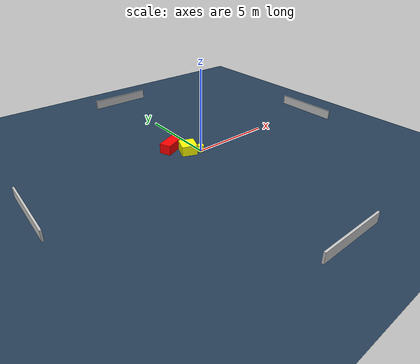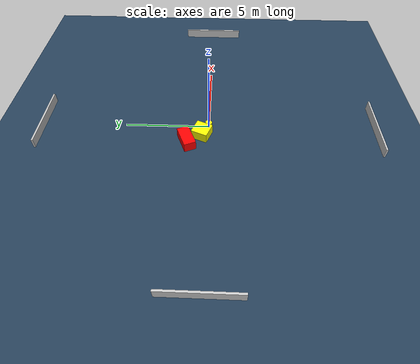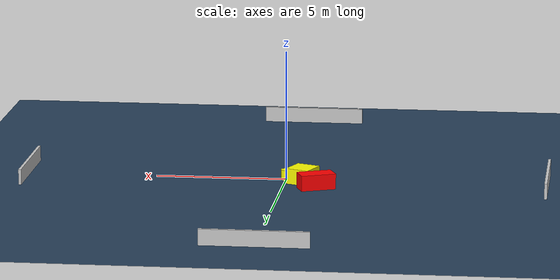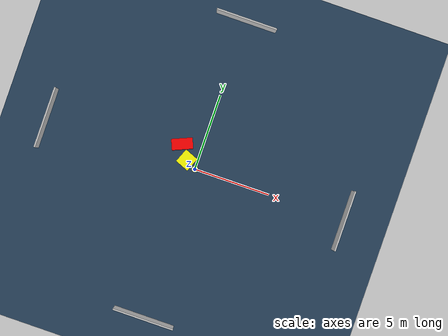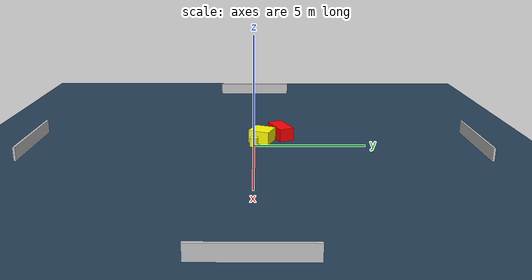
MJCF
<?xml version="1.0" ?>
<mujoco model="generated_environment">
  <option timestep="0.01" integrator="RK4" cone="elliptic"/>
  <default>
    <geom density="1"/>
  </default>
  <asset>
    <texture builtin="gradient" height="3072" name="skybox" rgb1="0.3 0.5 0.7" rgb2="0 0 0" type="skybox" width="512"/>
    <texture builtin="checker" height="300" name="groundplane" rgb1="0.2 0.3 0.4" rgb2="0.1 0.2 0.3" type="2d" width="300"/>
    <material name="groundplane" reflectance="0.2" texrepeat="5 5" texture="groundplane"/>
  </asset>
  <worldbody>
    <light dir="0 0 -1" directional="true" pos="0 0 1.5"/>
    <geom condim="3" friction="0.5 0.005 0.001" material="groundplane" name="floor" pos="0 0 0" size="0 0 0.05" type="plane"/>
    <body name="walls">
      <geom name="wall_1" condim="4" pos="-10.0 0.0 0.3" rgba="0.800000011920929 0.800000011920929 0.800000011920929 1.0" size="0.05 2.0 0.3" type="box"/>
      <geom name="wall_2" condim="4" pos="10.0 0.0 0.3" rgba="0.800000011920929 0.800000011920929 0.800000011920929 1.0" size="0.05 2.0 0.3" type="box"/>
      <geom name="wall_3" condim="4" pos="0.0 -10.0 0.3" rgba="0.800000011920929 0.800000011920929 0.800000011920929 1.0" size="2.0 0.05 0.3" type="box"/>
      <geom name="wall_4" condim="4" pos="0.0 10.0 0.3" rgba="0.800000011920929 0.800000011920929 0.800000011920929 1.0" size="2.0 0.05 0.3" type="box"/>
    </body>
    <body name="robot">
      <joint name="joint_x" type="slide" pos="0 0 0" axis="1 0 0"/>
      <joint name="joint_y" type="slide" pos="0 0 0" axis="0 1 0"/>
      <geom name="robot" type="cylinder" pos="0.0 0.0 0.2" size="0.2 0.2 0.0" mass="5.0" friction="1.0 0.005 0.0001" condim="4" rgba="1.0 1.0 0.0 1.0"/>
    </body>
    <body name="obstacle_1_movable">
      <geom name="obstacle_1_movable" condim="4" pos="-0.6753694443419778 0.3743717793084047 0.3" euler="0 0 247.90261210155847" friction="0.0 0.005 0.001" rgba="1.0 1.0 0.0 1.0" size="0.48442268344305267 0.4634044064777693 0.3" type="box" mass="0.1"/>
      <joint type="free"/>
    </body>
    <body name="obstacle_2_static">
      <geom name="obstacle_2_static" condim="4" pos="-1.2808944064366514 1.2497781816688711 0.3" euler="0 0 293.1612218216047" friction="0.0 0.005 0.001" rgba="1.0 0.0 0.0 1.0" size="0.3499028663482723 0.6753462991551564 0.3" type="box"/>
    </body>
  </worldbody>
  <actuator>
    <motor name="actuator_x" joint="joint_x" gear="1" ctrlrange="-1 1"/>
    <motor name="actuator_y" joint="joint_y" gear="1" ctrlrange="-1 1"/>
  </actuator>
</mujoco>
